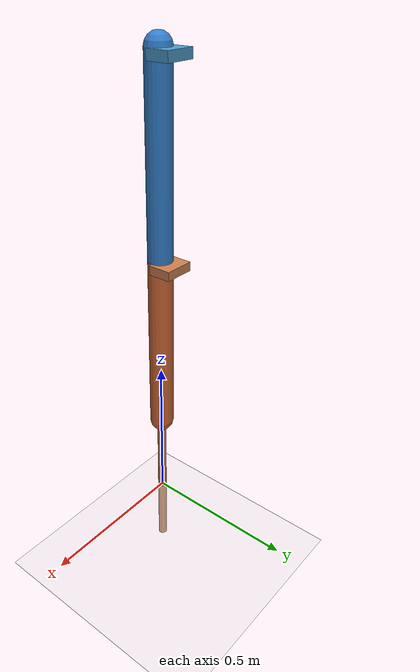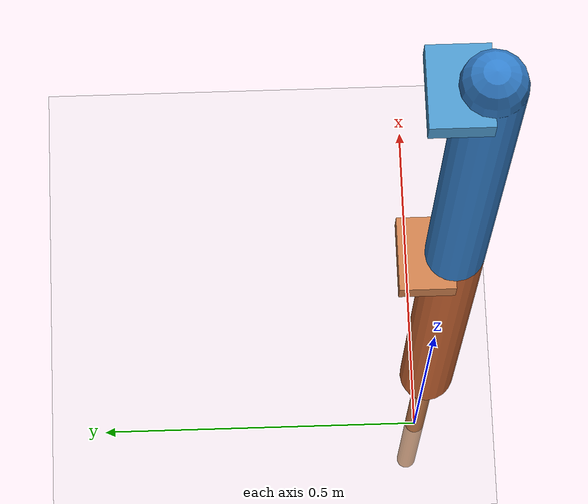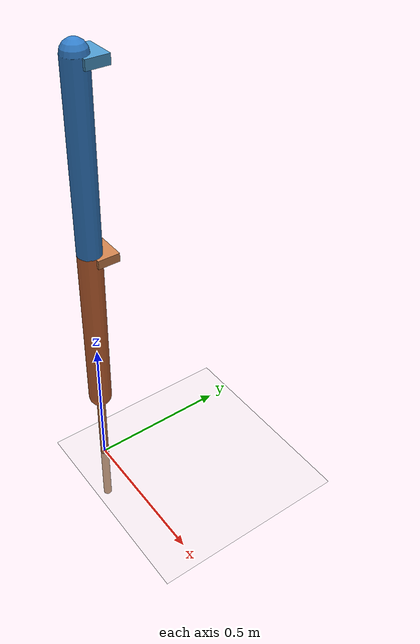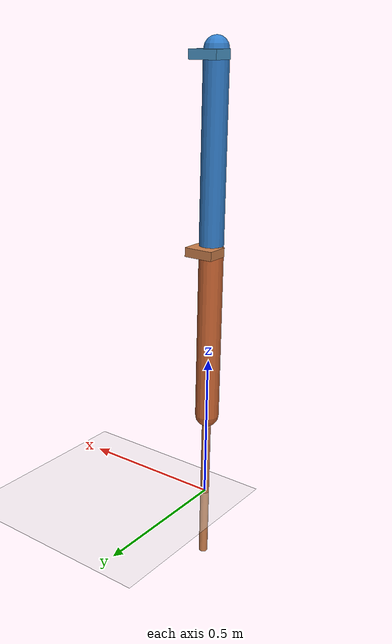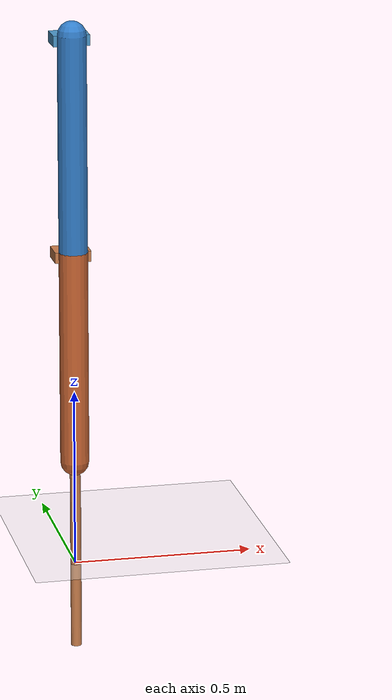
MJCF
<mujoco model="double_pendulum_mesh">
  <compiler angle="radian" coordinate="local" meshdir="../assets/meshes"/>

  <option timestep="0.002" gravity="0 0 -9.81" integrator="RK4"/>

  <visual>
    <headlight diffuse="0.8 0.8 0.8" ambient="0.2 0.2 0.2" specular="0 0 0"/>
  </visual>

  <asset>
    <!-- Placeholder mesh already present in repo root. Replace with link-specific OBJs later. -->
    <mesh name="link_mesh" file="Two_link_model.obj" scale="0.01 0.01 0.01"/>
    <material name="mesh_mat1" rgba="0.3 0.6 0.8 1"/>
    <material name="mesh_mat2" rgba="0.8 0.5 0.3 1"/>
  </asset>

  <default>
    <joint limited="false" damping="0.02"/>
    <geom type="capsule" friction="1 0.1 0.1" density="800"/>
  </default>

  <worldbody>
    <light pos="0 0 3"/>
    <geom name="ground" type="plane" size="2 2 0.1" rgba="0.9 0.9 0.9 1"/>
    <camera name="main" pos="2.2 -2.2 1.8" xyaxes="0.7 0.7 0  -0.3 0.3 0.9"/>

    <body name="base" pos="0 0 1.5">
      <site name="pivot" pos="0 0 0" size="0.01" rgba="0 0 0 1"/>

      <body name="link1">
        <joint name="hinge1" type="hinge" axis="0 1 0"/>

        <!-- Physics/collision geom (simple + stable). -->
        <geom name="rod1_col" fromto="0 0 0  0 0 -0.6" size="0.04" rgba="0.2 0.5 0.8 1"/>

        <!-- Visual mesh geom (no collision). -->
        <geom
          name="rod1_vis"
          type="mesh"
          mesh="link_mesh"
          material="mesh_mat1"
          contype="0"
          conaffinity="0"/>

        <body name="link2" pos="0 0 -0.6">
          <joint name="hinge2" type="hinge" axis="0 1 0"/>

          <geom name="rod2_col" fromto="0 0 0  0 0 -0.6" size="0.04" rgba="0.8 0.4 0.2 1"/>
          <geom
            name="rod2_vis"
            type="mesh"
            mesh="link_mesh"
            material="mesh_mat2"
            contype="0"
            conaffinity="0"/>
        </body>
      </body>
    </body>
  </worldbody>
</mujoco>
